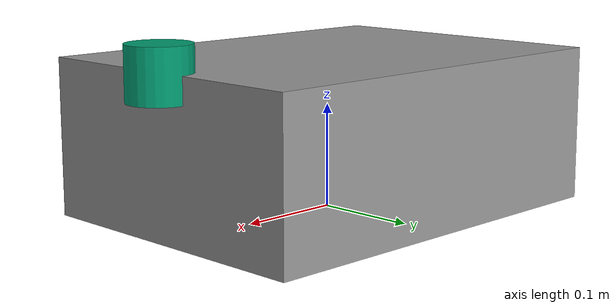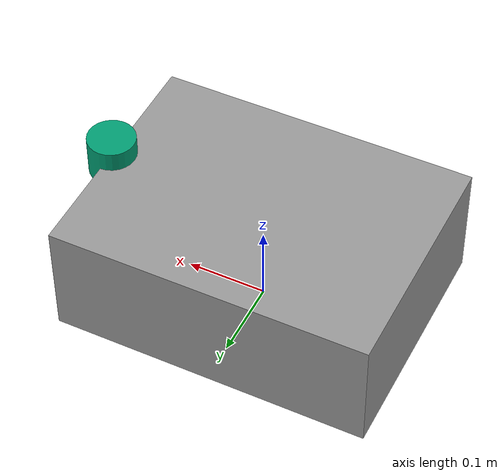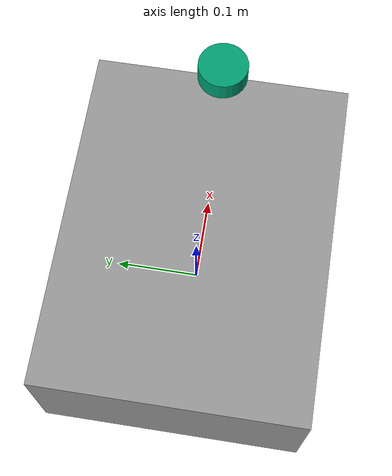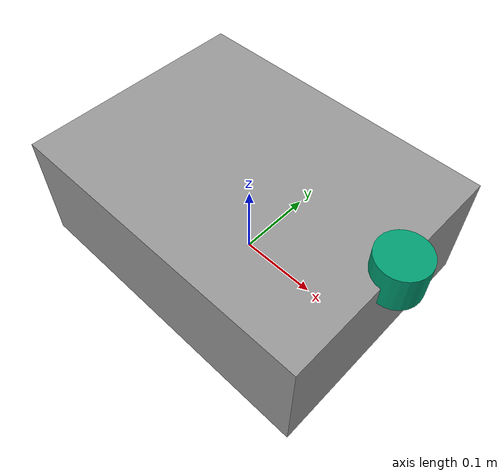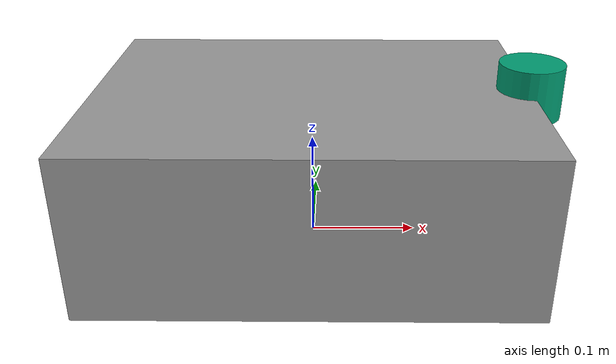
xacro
<?xml version="1.0"?>
<robot xmlns:xacro="http://www.ros.org/wiki/xacro" name="simple_rover">

  <!-- Ground reference -->
  <link name="base_footprint"/>

  <!-- Robot body -->
  <link name="base_link">
    <visual>
      <geometry>
        <box size="0.4 0.3 0.15"/>
      </geometry>
      <origin xyz="0 0 0.075"/>
      <material name="gray"/>
    </visual>
  </link>

  <!-- Laser -->
  <link name="laser_frame">
    <visual>
      <geometry>
        <cylinder radius="0.03" length="0.05"/>
      </geometry>
    </visual>
  </link>

  <!-- Wheels -->
  <link name="left_wheel"/>
  <link name="right_wheel"/>

  <!-- base_footprint → base_link -->
  <joint name="base_footprint_to_base_link" type="fixed">
    <parent link="base_footprint"/>
    <child link="base_link"/>
    <origin xyz="0 0 0" rpy="0 0 0"/>
  </joint>

  <!-- base_link → laser -->
  <joint name="laser_joint" type="fixed">
    <parent link="base_link"/>
    <child link="laser_frame"/>
    <origin xyz="0.2 0 0.15" rpy="0 0 0"/>
  </joint>

  <!-- Wheels -->
  <joint name="left_wheel_joint" type="fixed">
    <parent link="base_link"/>
    <child link="left_wheel"/>
    <origin xyz="0 0.12 0"/>
  </joint>

  <joint name="right_wheel_joint" type="fixed">
    <parent link="base_link"/>
    <child link="right_wheel"/>
    <origin xyz="0 -0.12 0"/>
  </joint>

</robot>
